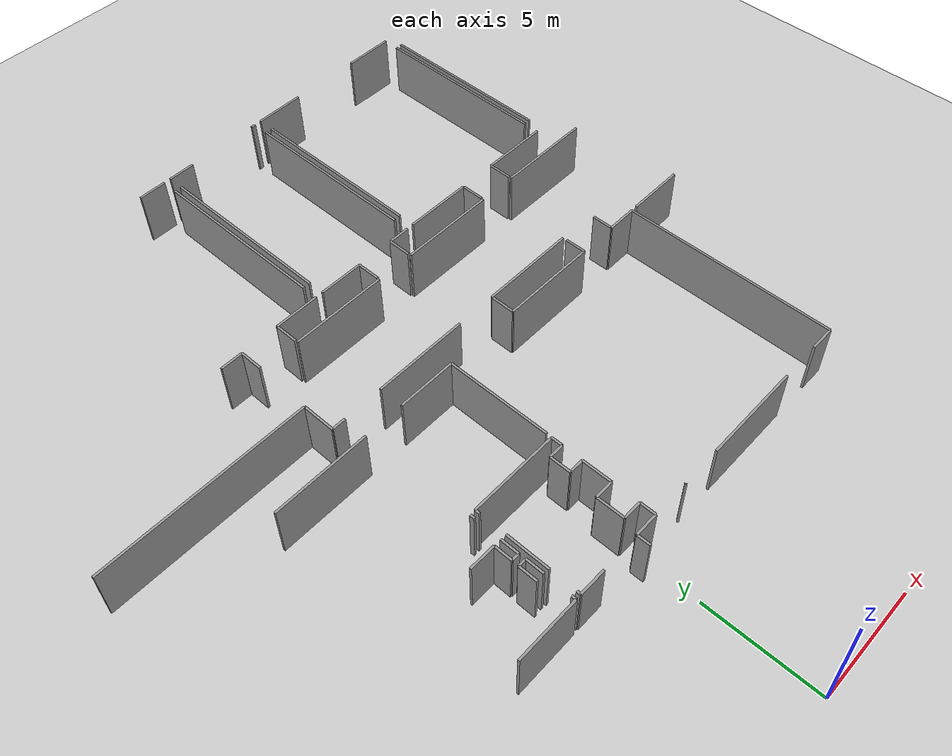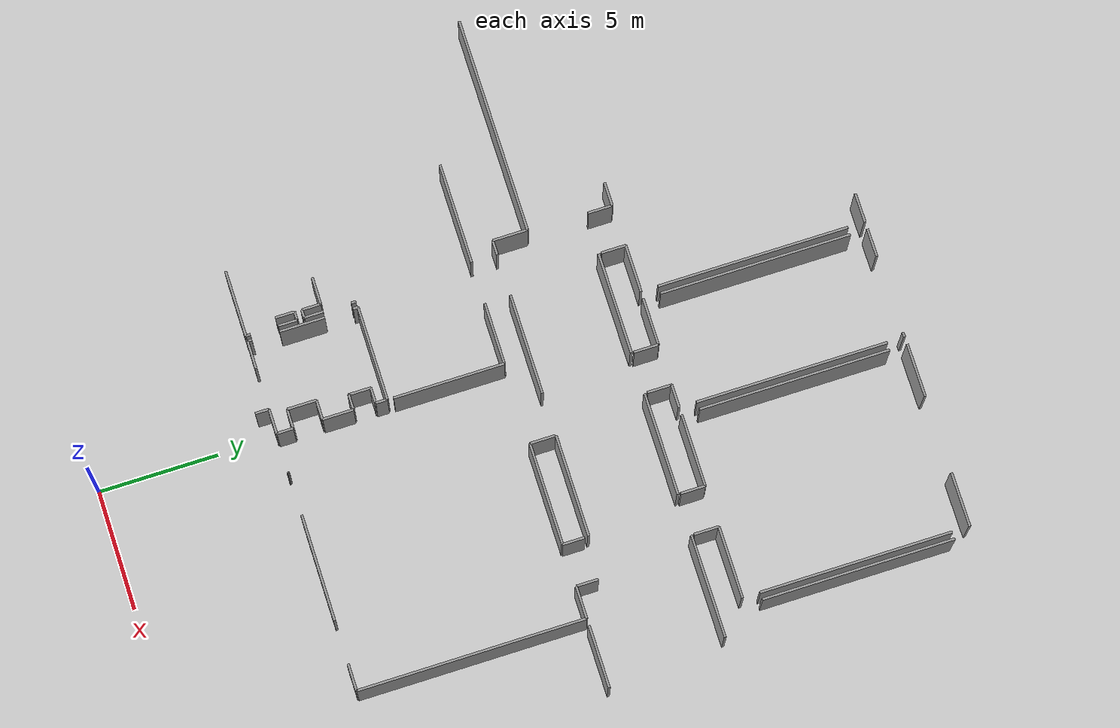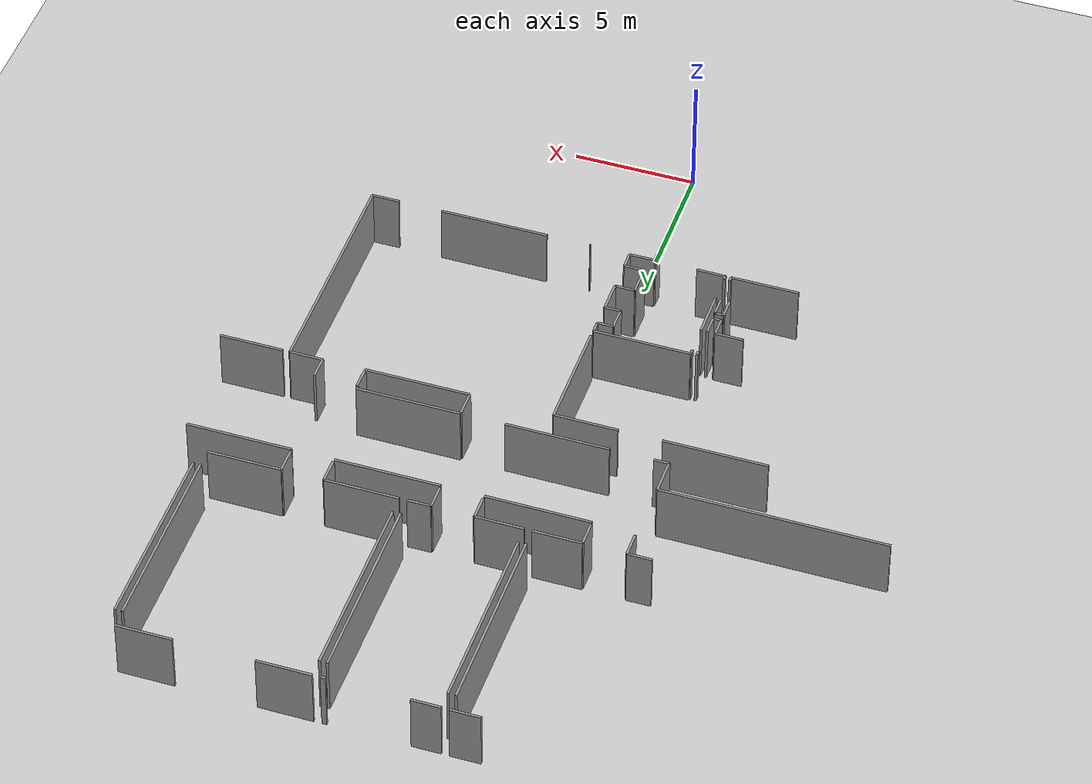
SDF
<sdf version="1.6">
 <world name="default">
  <model name="ground_plane">
   <static>1</static>
   <link name="link">
    <collision name="collision">
     <geometry><plane><normal>0 0 1</normal><size>100 100</size></plane></geometry>
     <surface><friction><ode><mu>100</mu><mu2>50</mu2></ode></friction></surface>
    </collision>
    <visual name="visual">
     <cast_shadows>0</cast_shadows>
     <geometry><plane><normal>0 0 1</normal><size>100 100</size></plane></geometry>
     <material>
      <script><uri>file://media/materials/scripts/gazebo.material</uri><name>Gazebo/Grey</name></script>
     </material>
    </visual>
   </link>
  </model>
  <model name="50052750">
   <static>1</static>
   <link name="Wall_87">
    <collision name="Wall_87_Collision">
     <geometry><box><size>4.24862293154 0.1 2.5</size></box></geometry>
     <pose>2.12431146577 0 1.25 0 0 0</pose>
    </collision>
    <visual name="Wall_87_Visual">
     <pose>2.12431146577 0 1.25 0 0 0</pose>
     <geometry><box><size>4.24862293154 0.1 2.5</size></box></geometry>
     <material>
      <script><uri>file://media/materials/scripts/gazebo.material</uri><name>Gazebo/Grey</name></script>
      <ambient>1 1 1 1</ambient>
     </material>
    </visual>
    <pose>39.8165517469 -10.6099997333 0 0 0 0.0</pose>
   </link>
   <link name="Wall_88">
    <collision name="Wall_88_Collision">
     <geometry><box><size>4.27059506376 0.1 2.5</size></box></geometry>
     <pose>2.13529753188 0 1.25 0 0 0</pose>
    </collision>
    <visual name="Wall_88_Visual">
     <pose>2.13529753188 0 1.25 0 0 0</pose>
     <geometry><box><size>4.27059506376 0.1 2.5</size></box></geometry>
     <material>
      <script><uri>file://media/materials/scripts/gazebo.material</uri><name>Gazebo/Grey</name></script>
      <ambient>1 1 1 1</ambient>
     </material>
    </visual>
    <pose>45.8145628244 -10.6099997333 0 0 0 0.0</pose>
   </link>
   <link name="Wall_89">
    <collision name="Wall_89_Collision">
     <geometry><box><size>4.28164463315 0.1 2.5</size></box></geometry>
     <pose>2.14082231657 0 1.25 0 0 0</pose>
    </collision>
    <visual name="Wall_89_Visual">
     <pose>2.14082231657 0 1.25 0 0 0</pose>
     <geometry><box><size>4.28164463315 0.1 2.5</size></box></geometry>
     <material>
      <script><uri>file://media/materials/scripts/gazebo.material</uri><name>Gazebo/Grey</name></script>
      <ambient>1 1 1 1</ambient>
     </material>
    </visual>
    <pose>51.8104147907 -10.6099997333 0 0 0 0.0</pose>
   </link>
   <link name="Wall_98">
    <collision name="Wall_98_Collision">
     <geometry><box><size>4.2496389839 0.1 2.5</size></box></geometry>
     <pose>2.12481949195 0 1.25 0 0 0</pose>
    </collision>
    <visual name="Wall_98_Visual">
     <pose>2.12481949195 0 1.25 0 0 0</pose>
     <geometry><box><size>4.2496389839 0.1 2.5</size></box></geometry>
     <material>
      <script><uri>file://media/materials/scripts/gazebo.material</uri><name>Gazebo/Grey</name></script>
      <ambient>1 1 1 1</ambient>
     </material>
    </visual>
    <pose>50.6110919896 -14.4903036853 0 0 0 3.14159265359</pose>
   </link>
   <link name="Wall_99">
    <collision name="Wall_99_Collision">
     <geometry><box><size>4.19528018279 0.1 2.5</size></box></geometry>
     <pose>2.09764009139 0 1.25 0 0 0</pose>
    </collision>
    <visual name="Wall_99_Visual">
     <pose>2.09764009139 0 1.25 0 0 0</pose>
     <geometry><box><size>4.19528018279 0.1 2.5</size></box></geometry>
     <material>
      <script><uri>file://media/materials/scripts/gazebo.material</uri><name>Gazebo/Grey</name></script>
      <ambient>1 1 1 1</ambient>
     </material>
    </visual>
    <pose>44.5612622418 -14.4903036853 0 0 0 3.14159265359</pose>
   </link>
   <link name="Wall_100">
    <collision name="Wall_100_Collision">
     <geometry><box><size>0.604932172155 0.1 2.5</size></box></geometry>
     <pose>0.302466086077 0 1.25 0 0 0</pose>
    </collision>
    <visual name="Wall_100_Visual">
     <pose>0.302466086077 0 1.25 0 0 0</pose>
     <geometry><box><size>0.604932172155 0.1 2.5</size></box></geometry>
     <material>
      <script><uri>file://media/materials/scripts/gazebo.material</uri><name>Gazebo/Grey</name></script>
      <ambient>1 1 1 1</ambient>
     </material>
    </visual>
    <pose>38.60935454 -14.4903036853 0 0 0 3.14159265359</pose>
   </link>
   <link name="Wall_101">
    <collision name="Wall_101_Collision">
     <geometry><box><size>1.46032125035 0.1 2.5</size></box></geometry>
     <pose>0.730160625177 0 1.25 0 0 0</pose>
    </collision>
    <visual name="Wall_101_Visual">
     <pose>0.730160625177 0 1.25 0 0 0</pose>
     <geometry><box><size>1.46032125035 0.1 2.5</size></box></geometry>
     <material>
      <script><uri>file://media/materials/scripts/gazebo.material</uri><name>Gazebo/Grey</name></script>
      <ambient>1 1 1 1</ambient>
     </material>
    </visual>
    <pose>38.0044223679 -14.4903036853 0 0 0 1.57079632679</pose>
   </link>
   <link name="Wall_102">
    <collision name="Wall_102_Collision">
     <geometry><box><size>9.13304062558 0.1 2.5</size></box></geometry>
     <pose>4.56652031279 0 1.25 0 0 0</pose>
    </collision>
    <visual name="Wall_102_Visual">
     <pose>4.56652031279 0 1.25 0 0 0</pose>
     <geometry><box><size>9.13304062558 0.1 2.5</size></box></geometry>
     <material>
      <script><uri>file://media/materials/scripts/gazebo.material</uri><name>Gazebo/Grey</name></script>
      <ambient>1 1 1 1</ambient>
     </material>
    </visual>
    <pose>38.0044223679 -13.029982435 0 0 0 3.14159265359</pose>
   </link>
   <link name="Wall_127">
    <collision name="Wall_127_Collision">
     <geometry><box><size>1.22497812312 0.1 2.5</size></box></geometry>
     <pose>0.612489061561 0 1.25 0 0 0</pose>
    </collision>
    <visual name="Wall_127_Visual">
     <pose>0.612489061561 0 1.25 0 0 0</pose>
     <geometry><box><size>1.22497812312 0.1 2.5</size></box></geometry>
     <material>
      <script><uri>file://media/materials/scripts/gazebo.material</uri><name>Gazebo/Grey</name></script>
      <ambient>1 1 1 1</ambient>
     </material>
    </visual>
    <pose>40.5710976287 -0.0260363416527 0 0 0 0.0</pose>
   </link>
   <link name="Wall_128">
    <collision name="Wall_128_Collision">
     <geometry><box><size>8.01868520285 0.1 2.5</size></box></geometry>
     <pose>4.00934260142 0 1.25 0 0 0</pose>
    </collision>
    <visual name="Wall_128_Visual">
     <pose>4.00934260142 0 1.25 0 0 0</pose>
     <geometry><box><size>8.01868520285 0.1 2.5</size></box></geometry>
     <material>
      <script><uri>file://media/materials/scripts/gazebo.material</uri><name>Gazebo/Grey</name></script>
      <ambient>1 1 1 1</ambient>
     </material>
    </visual>
    <pose>41.7960757518 -0.741337201106 0 0 0 -1.57079632679</pose>
   </link>
   <link name="Wall_129">
    <collision name="Wall_129_Collision">
     <geometry><box><size>1.9858743321 0.1 2.5</size></box></geometry>
     <pose>0.992937166052 0 1.25 0 0 0</pose>
    </collision>
    <visual name="Wall_129_Visual">
     <pose>0.992937166052 0 1.25 0 0 0</pose>
     <geometry><box><size>1.9858743321 0.1 2.5</size></box></geometry>
     <material>
      <script><uri>file://media/materials/scripts/gazebo.material</uri><name>Gazebo/Grey</name></script>
      <ambient>1 1 1 1</ambient>
     </material>
    </visual>
    <pose>41.7960757518 -9.47151306707 0 0 0 3.14159265359</pose>
   </link>
   <link name="Wall_130">
    <collision name="Wall_130_Collision">
     <geometry><box><size>1.02697492002 0.1 2.5</size></box></geometry>
     <pose>0.513487460009 0 1.25 0 0 0</pose>
    </collision>
    <visual name="Wall_130_Visual">
     <pose>0.513487460009 0 1.25 0 0 0</pose>
     <geometry><box><size>1.02697492002 0.1 2.5</size></box></geometry>
     <material>
      <script><uri>file://media/materials/scripts/gazebo.material</uri><name>Gazebo/Grey</name></script>
      <ambient>1 1 1 1</ambient>
     </material>
    </visual>
    <pose>39.8102014197 -9.47151306707 0 0 0 -1.57079632679</pose>
   </link>
   <link name="Wall_131">
    <collision name="Wall_131_Collision">
     <geometry><box><size>1.01262318047 0.1 2.5</size></box></geometry>
     <pose>0.506311590236 0 1.25 0 0 0</pose>
    </collision>
    <visual name="Wall_131_Visual">
     <pose>0.506311590236 0 1.25 0 0 0</pose>
     <geometry><box><size>1.01262318047 0.1 2.5</size></box></geometry>
     <material>
      <script><uri>file://media/materials/scripts/gazebo.material</uri><name>Gazebo/Grey</name></script>
      <ambient>1 1 1 1</ambient>
     </material>
    </visual>
    <pose>38.0770701114 -10.4984879871 0 0 0 1.57079632679</pose>
   </link>
   <link name="Wall_132">
    <collision name="Wall_132_Collision">
     <geometry><box><size>0.990270158928 0.1 2.5</size></box></geometry>
     <pose>0.495135079464 0 1.25 0 0 0</pose>
    </collision>
    <visual name="Wall_132_Visual">
     <pose>0.495135079464 0 1.25 0 0 0</pose>
     <geometry><box><size>0.990270158928 0.1 2.5</size></box></geometry>
     <material>
      <script><uri>file://media/materials/scripts/gazebo.material</uri><name>Gazebo/Grey</name></script>
      <ambient>1 1 1 1</ambient>
     </material>
    </visual>
    <pose>38.0770701114 -9.48586480661 0 0 0 3.14107963581</pose>
   </link>
   <link name="Wall_133">
    <collision name="Wall_133_Collision">
     <geometry><box><size>8.00649257456 0.1 2.5</size></box></geometry>
     <pose>4.00324628728 0 1.25 0 0 0</pose>
    </collision>
    <visual name="Wall_133_Visual">
     <pose>4.00324628728 0 1.25 0 0 0</pose>
     <geometry><box><size>8.00649257456 0.1 2.5</size></box></geometry>
     <material>
      <script><uri>file://media/materials/scripts/gazebo.material</uri><name>Gazebo/Grey</name></script>
      <ambient>1 1 1 1</ambient>
     </material>
    </visual>
    <pose>42.1045746487 -8.75354507018 0 0 0 1.57079632679</pose>
   </link>
   <link name="Wall_134">
    <collision name="Wall_134_Collision">
     <geometry><box><size>1.1816688914 0.1 2.5</size></box></geometry>
     <pose>0.590834445699 0 1.25 0 0 0</pose>
    </collision>
    <visual name="Wall_134_Visual">
     <pose>0.590834445699 0 1.25 0 0 0</pose>
     <geometry><box><size>1.1816688914 0.1 2.5</size></box></geometry>
     <material>
      <script><uri>file://media/materials/scripts/gazebo.material</uri><name>Gazebo/Grey</name></script>
      <ambient>1 1 1 1</ambient>
     </material>
    </visual>
    <pose>42.1045746487 -0.0267983809206 0 0 0 0.0</pose>
   </link>
   <link name="Wall_135">
    <collision name="Wall_135_Collision">
     <geometry><box><size>0.200543333998 0.1 2.5</size></box></geometry>
     <pose>0.100271666999 0 1.25 0 0 0</pose>
    </collision>
    <visual name="Wall_135_Visual">
     <pose>0.100271666999 0 1.25 0 0 0</pose>
     <geometry><box><size>0.200543333998 0.1 2.5</size></box></geometry>
     <material>
      <script><uri>file://media/materials/scripts/gazebo.material</uri><name>Gazebo/Grey</name></script>
      <ambient>1 1 1 1</ambient>
     </material>
    </visual>
    <pose>46.56161532 -0.0267983809206 0 0 0 0.0</pose>
   </link>
   <link name="Wall_136">
    <collision name="Wall_136_Collision">
     <geometry><box><size>8.01449398688 0.1 2.5</size></box></geometry>
     <pose>4.00724699344 0 1.25 0 0 0</pose>
    </collision>
    <visual name="Wall_136_Visual">
     <pose>4.00724699344 0 1.25 0 0 0</pose>
     <geometry><box><size>8.01449398688 0.1 2.5</size></box></geometry>
     <material>
      <script><uri>file://media/materials/scripts/gazebo.material</uri><name>Gazebo/Grey</name></script>
      <ambient>1 1 1 1</ambient>
     </material>
    </visual>
    <pose>46.762158654 -0.74336930582 0 0 0 -1.57079632679</pose>
   </link>
   <link name="Wall_137">
    <collision name="Wall_137_Collision">
     <geometry><box><size>0.959788457899 0.1 2.5</size></box></geometry>
     <pose>0.47989422895 0 1.25 0 0 0</pose>
    </collision>
    <visual name="Wall_137_Visual">
     <pose>0.47989422895 0 1.25 0 0 0</pose>
     <geometry><box><size>0.959788457899 0.1 2.5</size></box></geometry>
     <material>
      <script><uri>file://media/materials/scripts/gazebo.material</uri><name>Gazebo/Grey</name></script>
      <ambient>1 1 1 1</ambient>
     </material>
    </visual>
    <pose>46.762158654 -9.48103855792 0 0 0 3.14159265359</pose>
   </link>
   <link name="Wall_138">
    <collision name="Wall_138_Collision">
     <geometry><box><size>1.02367274986 0.1 2.5</size></box></geometry>
     <pose>0.511836374928 0 1.25 0 0 0</pose>
    </collision>
    <visual name="Wall_138_Visual">
     <pose>0.511836374928 0 1.25 0 0 0</pose>
     <geometry><box><size>1.02367274986 0.1 2.5</size></box></geometry>
     <material>
      <script><uri>file://media/materials/scripts/gazebo.material</uri><name>Gazebo/Grey</name></script>
      <ambient>1 1 1 1</ambient>
     </material>
    </visual>
    <pose>45.8023701961 -9.48103855792 0 0 0 -1.57079632679</pose>
   </link>
   <link name="Wall_139">
    <collision name="Wall_139_Collision">
     <geometry><box><size>1.02341873677 0.1 2.5</size></box></geometry>
     <pose>0.511709368384 0 1.25 0 0 0</pose>
    </collision>
    <visual name="Wall_139_Visual">
     <pose>0.511709368384 0 1.25 0 0 0</pose>
     <geometry><box><size>1.02341873677 0.1 2.5</size></box></geometry>
     <material>
      <script><uri>file://media/materials/scripts/gazebo.material</uri><name>Gazebo/Grey</name></script>
      <ambient>1 1 1 1</ambient>
     </material>
    </visual>
    <pose>44.0788913853 -10.5047113078 0 0 0 1.57079632679</pose>
   </link>
   <link name="Wall_140">
    <collision name="Wall_140_Collision">
     <geometry><box><size>1.97431928974 0.1 2.5</size></box></geometry>
     <pose>0.987159644872 0 1.25 0 0 0</pose>
    </collision>
    <visual name="Wall_140_Visual">
     <pose>0.987159644872 0 1.25 0 0 0</pose>
     <geometry><box><size>1.97431928974 0.1 2.5</size></box></geometry>
     <material>
      <script><uri>file://media/materials/scripts/gazebo.material</uri><name>Gazebo/Grey</name></script>
      <ambient>1 1 1 1</ambient>
     </material>
    </visual>
    <pose>44.0788913853 -9.48129257101 0 0 0 3.13998442082</pose>
   </link>
   <link name="Wall_141">
    <collision name="Wall_141_Collision">
     <geometry><box><size>7.97778909547 0.1 2.5</size></box></geometry>
     <pose>3.98889454774 0 1.25 0 0 0</pose>
    </collision>
    <visual name="Wall_141_Visual">
     <pose>3.98889454774 0 1.25 0 0 0</pose>
     <geometry><box><size>7.97778909547 0.1 2.5</size></box></geometry>
     <material>
      <script><uri>file://media/materials/scripts/gazebo.material</uri><name>Gazebo/Grey</name></script>
      <ambient>1 1 1 1</ambient>
     </material>
    </visual>
    <pose>47.0724356426 -8.73462109503 0 0 0 1.57079632679</pose>
   </link>
   <link name="Wall_142">
    <collision name="Wall_142_Collision">
     <geometry><box><size>2.22172548551 0.1 2.5</size></box></geometry>
     <pose>1.11086274276 0 1.25 0 0 0</pose>
    </collision>
    <visual name="Wall_142_Visual">
     <pose>1.11086274276 0 1.25 0 0 0</pose>
     <geometry><box><size>2.22172548551 0.1 2.5</size></box></geometry>
     <material>
      <script><uri>file://media/materials/scripts/gazebo.material</uri><name>Gazebo/Grey</name></script>
      <ambient>1 1 1 1</ambient>
     </material>
    </visual>
    <pose>47.0724356426 -0.0161298311702 0 0 0 0.0</pose>
   </link>
   <link name="Wall_143">
    <collision name="Wall_143_Collision">
     <geometry><box><size>2.26478070415 0.1 2.5</size></box></geometry>
     <pose>1.13239035207 0 1.25 0 0 0</pose>
    </collision>
    <visual name="Wall_143_Visual">
     <pose>1.13239035207 0 1.25 0 0 0</pose>
     <geometry><box><size>2.26478070415 0.1 2.5</size></box></geometry>
     <material>
      <script><uri>file://media/materials/scripts/gazebo.material</uri><name>Gazebo/Grey</name></script>
      <ambient>1 1 1 1</ambient>
     </material>
    </visual>
    <pose>52.5391783439 -0.0161298311702 0 0 0 0.0</pose>
   </link>
   <link name="Wall_144">
    <collision name="Wall_144_Collision">
     <geometry><box><size>8.00674658765 0.1 2.5</size></box></geometry>
     <pose>4.00337329383 0 1.25 0 0 0</pose>
    </collision>
    <visual name="Wall_144_Visual">
     <pose>4.00337329383 0 1.25 0 0 0</pose>
     <geometry><box><size>8.00674658765 0.1 2.5</size></box></geometry>
     <material>
      <script><uri>file://media/materials/scripts/gazebo.material</uri><name>Gazebo/Grey</name></script>
      <ambient>1 1 1 1</ambient>
     </material>
    </visual>
    <pose>54.803959048 -0.746798482526 0 0 0 -1.57079632679</pose>
   </link>
   <link name="Wall_145">
    <collision name="Wall_145_Collision">
     <geometry><box><size>2.9931632377 0.1 2.5</size></box></geometry>
     <pose>1.49658161885 0 1.25 0 0 0</pose>
    </collision>
    <visual name="Wall_145_Visual">
     <pose>1.49658161885 0 1.25 0 0 0</pose>
     <geometry><box><size>2.9931632377 0.1 2.5</size></box></geometry>
     <material>
      <script><uri>file://media/materials/scripts/gazebo.material</uri><name>Gazebo/Grey</name></script>
      <ambient>1 1 1 1</ambient>
     </material>
    </visual>
    <pose>54.803959048 -9.47341816524 0 0 0 3.14159265359</pose>
   </link>
   <link name="Wall_146">
    <collision name="Wall_146_Collision">
     <geometry><box><size>1.02938804437 0.1 2.5</size></box></geometry>
     <pose>0.514694022183 0 1.25 0 0 0</pose>
    </collision>
    <visual name="Wall_146_Visual">
     <pose>0.514694022183 0 1.25 0 0 0</pose>
     <geometry><box><size>1.02938804437 0.1 2.5</size></box></geometry>
     <material>
      <script><uri>file://media/materials/scripts/gazebo.material</uri><name>Gazebo/Grey</name></script>
      <ambient>1 1 1 1</ambient>
     </material>
    </visual>
    <pose>51.8107958103 -9.47341816524 0 0 0 -1.57079632679</pose>
   </link>
   <link name="Wall_147">
    <collision name="Wall_147_Collision">
     <geometry><box><size>1.02011656661 0.1 2.5</size></box></geometry>
     <pose>0.510058283303 0 1.25 0 0 0</pose>
    </collision>
    <visual name="Wall_147_Visual">
     <pose>0.510058283303 0 1.25 0 0 0</pose>
     <geometry><box><size>1.02011656661 0.1 2.5</size></box></geometry>
     <material>
      <script><uri>file://media/materials/scripts/gazebo.material</uri><name>Gazebo/Grey</name></script>
      <ambient>1 1 1 1</ambient>
     </material>
    </visual>
    <pose>50.09023815 -10.5028062096 0 0 0 1.57079632679</pose>
   </link>
   <link name="Wall_148">
    <collision name="Wall_148_Collision">
     <geometry><box><size>3.01781059192 0.1 2.5</size></box></geometry>
     <pose>1.50890529596 0 1.25 0 0 0</pose>
    </collision>
    <visual name="Wall_148_Visual">
     <pose>1.50890529596 0 1.25 0 0 0</pose>
     <geometry><box><size>3.01781059192 0.1 2.5</size></box></geometry>
     <material>
      <script><uri>file://media/materials/scripts/gazebo.material</uri><name>Gazebo/Grey</name></script>
      <ambient>1 1 1 1</ambient>
     </material>
    </visual>
    <pose>50.09023815 -9.482689643 0 0 0 3.13927794033</pose>
   </link>
   <link name="Wall_149">
    <collision name="Wall_149_Collision">
     <geometry><box><size>8.01601806541 0.1 2.5</size></box></geometry>
     <pose>4.00800903271 0 1.25 0 0 0</pose>
    </collision>
    <visual name="Wall_149_Visual">
     <pose>4.00800903271 0 1.25 0 0 0</pose>
     <geometry><box><size>8.01601806541 0.1 2.5</size></box></geometry>
     <material>
      <script><uri>file://media/materials/scripts/gazebo.material</uri><name>Gazebo/Grey</name></script>
      <ambient>1 1 1 1</ambient>
     </material>
    </visual>
    <pose>55.0956930811 -8.7518939851 0 0 0 1.57079632679</pose>
   </link>
   <link name="Wall_207">
    <collision name="Wall_207_Collision">
     <geometry><box><size>2.59512472678 0.1 2.5</size></box></geometry>
     <pose>1.29756236339 0 1.25 0 0 0</pose>
    </collision>
    <visual name="Wall_207_Visual">
     <pose>1.29756236339 0 1.25 0 0 0</pose>
     <geometry><box><size>2.59512472678 0.1 2.5</size></box></geometry>
     <material>
      <script><uri>file://media/materials/scripts/gazebo.material</uri><name>Gazebo/Grey</name></script>
      <ambient>1 1 1 1</ambient>
     </material>
    </visual>
    <pose>54.0171535039 -15.5669381643 0 0 0 0.0</pose>
   </link>
   <link name="Wall_219">
    <collision name="Wall_219_Collision">
     <geometry><box><size>1.04005659412 0.1 2.5</size></box></geometry>
     <pose>0.520028297058 0 1.25 0 0 0</pose>
    </collision>
    <visual name="Wall_219_Visual">
     <pose>0.520028297058 0 1.25 0 0 0</pose>
     <geometry><box><size>1.04005659412 0.1 2.5</size></box></geometry>
     <material>
      <script><uri>file://media/materials/scripts/gazebo.material</uri><name>Gazebo/Grey</name></script>
      <ambient>1 1 1 1</ambient>
     </material>
    </visual>
    <pose>46.3599289271 -14.537804133 0 0 0 -1.57079632679</pose>
   </link>
   <link name="Wall_220">
    <collision name="Wall_220_Collision">
     <geometry><box><size>4.2638637169 0.1 2.5</size></box></geometry>
     <pose>2.13193185845 0 1.25 0 0 0</pose>
    </collision>
    <visual name="Wall_220_Visual">
     <pose>2.13193185845 0 1.25 0 0 0</pose>
     <geometry><box><size>4.2638637169 0.1 2.5</size></box></geometry>
     <material>
      <script><uri>file://media/materials/scripts/gazebo.material</uri><name>Gazebo/Grey</name></script>
      <ambient>1 1 1 1</ambient>
     </material>
    </visual>
    <pose>46.3599289271 -15.5778607272 0 0 0 0.0</pose>
   </link>
   <link name="Wall_221">
    <collision name="Wall_221_Collision">
     <geometry><box><size>0.920289422514 0.1 2.5</size></box></geometry>
     <pose>0.460144711257 0 1.25 0 0 0</pose>
    </collision>
    <visual name="Wall_221_Visual">
     <pose>0.460144711257 0 1.25 0 0 0</pose>
     <geometry><box><size>0.920289422514 0.1 2.5</size></box></geometry>
     <material>
      <script><uri>file://media/materials/scripts/gazebo.material</uri><name>Gazebo/Grey</name></script>
      <ambient>1 1 1 1</ambient>
     </material>
    </visual>
    <pose>50.623792644 -15.5778607272 0 0 0 1.57079632679</pose>
   </link>
   <link name="Wall_222">
    <collision name="Wall_222_Collision">
     <geometry><box><size>0.915590180362 0.1 2.5</size></box></geometry>
     <pose>0.457795090181 0 1.25 0 0 0</pose>
    </collision>
    <visual name="Wall_222_Visual">
     <pose>0.457795090181 0 1.25 0 0 0</pose>
     <geometry><box><size>0.915590180362 0.1 2.5</size></box></geometry>
     <material>
      <script><uri>file://media/materials/scripts/gazebo.material</uri><name>Gazebo/Grey</name></script>
      <ambient>1 1 1 1</ambient>
     </material>
    </visual>
    <pose>52.3791500976 -14.6575713046 0 0 0 -1.57079632679</pose>
   </link>
   <link name="Wall_223">
    <collision name="Wall_223_Collision">
     <geometry><box><size>1.34499930781 0.1 2.5</size></box></geometry>
     <pose>0.672499653907 0 1.25 0 0 0</pose>
    </collision>
    <visual name="Wall_223_Visual">
     <pose>0.672499653907 0 1.25 0 0 0</pose>
     <geometry><box><size>1.34499930781 0.1 2.5</size></box></geometry>
     <material>
      <script><uri>file://media/materials/scripts/gazebo.material</uri><name>Gazebo/Grey</name></script>
      <ambient>1 1 1 1</ambient>
     </material>
    </visual>
    <pose>52.3791500976 -15.573161485 0 0 0 0.0</pose>
   </link>
   <link name="Wall_224">
    <collision name="Wall_224_Collision">
     <geometry><box><size>9.47468823068 0.1 2.5</size></box></geometry>
     <pose>4.73734411534 0 1.25 0 0 0</pose>
    </collision>
    <visual name="Wall_224_Visual">
     <pose>4.73734411534 0 1.25 0 0 0</pose>
     <geometry><box><size>9.47468823068 0.1 2.5</size></box></geometry>
     <material>
      <script><uri>file://media/materials/scripts/gazebo.material</uri><name>Gazebo/Grey</name></script>
      <ambient>1 1 1 1</ambient>
     </material>
    </visual>
    <pose>53.7241494054 -15.573161485 0 0 0 -1.57079632679</pose>
   </link>
   <link name="Wall_225">
    <collision name="Wall_225_Collision">
     <geometry><box><size>1.12032473033 0.1 2.5</size></box></geometry>
     <pose>0.560162365167 0 1.25 0 0 0</pose>
    </collision>
    <visual name="Wall_225_Visual">
     <pose>0.560162365167 0 1.25 0 0 0</pose>
     <geometry><box><size>1.12032473033 0.1 2.5</size></box></geometry>
     <material>
      <script><uri>file://media/materials/scripts/gazebo.material</uri><name>Gazebo/Grey</name></script>
      <ambient>1 1 1 1</ambient>
     </material>
    </visual>
    <pose>53.7241494054 -25.0478497157 0 0 0 3.14159265359</pose>
   </link>
   <link name="Wall_226">
    <collision name="Wall_226_Collision">
     <geometry><box><size>4.43430649981 0.1 2.5</size></box></geometry>
     <pose>2.21715324991 0 1.25 0 0 0</pose>
    </collision>
    <visual name="Wall_226_Visual">
     <pose>2.21715324991 0 1.25 0 0 0</pose>
     <geometry><box><size>4.43430649981 0.1 2.5</size></box></geometry>
     <material>
      <script><uri>file://media/materials/scripts/gazebo.material</uri><name>Gazebo/Grey</name></script>
      <ambient>1 1 1 1</ambient>
     </material>
    </visual>
    <pose>50.8083331534 -25.0478497157 0 0 0 3.14159265359</pose>
   </link>
   <link name="Wall_227">
    <collision name="Wall_227_Collision">
     <geometry><box><size>0.0482681685033 0.1 2.5</size></box></geometry>
     <pose>0.0241340842516 0 1.25 0 0 0</pose>
    </collision>
    <visual name="Wall_227_Visual">
     <pose>0.0241340842516 0 1.25 0 0 0</pose>
     <geometry><box><size>0.0482681685033 0.1 2.5</size></box></geometry>
     <material>
      <script><uri>file://media/materials/scripts/gazebo.material</uri><name>Gazebo/Grey</name></script>
      <ambient>1 1 1 1</ambient>
     </material>
    </visual>
    <pose>44.5952999958 -25.0478497157 0 0 0 -2.59666054857</pose>
   </link>
   <link name="Wall_273">
    <collision name="Wall_273_Collision">
     <geometry><box><size>4.62151414662 0.1 2.5</size></box></geometry>
     <pose>2.31075707331 0 1.25 0 0 0</pose>
    </collision>
    <visual name="Wall_273_Visual">
     <pose>2.31075707331 0 1.25 0 0 0</pose>
     <geometry><box><size>4.62151414662 0.1 2.5</size></box></geometry>
     <material>
      <script><uri>file://media/materials/scripts/gazebo.material</uri><name>Gazebo/Grey</name></script>
      <ambient>1 1 1 1</ambient>
     </material>
    </visual>
    <pose>42.9585666549 -20.1884523109 0 0 0 1.57079632679</pose>
   </link>
   <link name="Wall_274">
    <collision name="Wall_274_Collision">
     <geometry><box><size>2.58229706577 0.1 2.5</size></box></geometry>
     <pose>1.29114853288 0 1.25 0 0 0</pose>
    </collision>
    <visual name="Wall_274_Visual">
     <pose>1.29114853288 0 1.25 0 0 0</pose>
     <geometry><box><size>2.58229706577 0.1 2.5</size></box></geometry>
     <material>
      <script><uri>file://media/materials/scripts/gazebo.material</uri><name>Gazebo/Grey</name></script>
      <ambient>1 1 1 1</ambient>
     </material>
    </visual>
    <pose>42.9585666549 -15.5669381643 0 0 0 3.14159265359</pose>
   </link>
   <link name="Wall_275">
    <collision name="Wall_275_Collision">
     <geometry><box><size>4.21598224957 0.1 2.5</size></box></geometry>
     <pose>2.10799112478 0 1.25 0 0 0</pose>
    </collision>
    <visual name="Wall_275_Visual">
     <pose>2.10799112478 0 1.25 0 0 0</pose>
     <geometry><box><size>4.21598224957 0.1 2.5</size></box></geometry>
     <material>
      <script><uri>file://media/materials/scripts/gazebo.material</uri><name>Gazebo/Grey</name></script>
      <ambient>1 1 1 1</ambient>
     </material>
    </visual>
    <pose>38.5998290492 -15.5669381643 0 0 0 3.14159265359</pose>
   </link>
   <link name="Wall_320">
    <collision name="Wall_320_Collision">
     <geometry><box><size>0.175396038158 0.1 2.5</size></box></geometry>
     <pose>0.0876980190789 0 1.25 0 0 0</pose>
    </collision>
    <visual name="Wall_320_Visual">
     <pose>0.0876980190789 0 1.25 0 0 0</pose>
     <geometry><box><size>0.175396038158 0.1 2.5</size></box></geometry>
     <material>
      <script><uri>file://media/materials/scripts/gazebo.material</uri><name>Gazebo/Grey</name></script>
      <ambient>1 1 1 1</ambient>
     </material>
    </visual>
    <pose>38.9918982525 -25.0453095848 0 0 0 1.57079632679</pose>
   </link>
   <link name="Wall_321">
    <collision name="Wall_321_Collision">
     <geometry><box><size>1.89747777703 0.1 2.5</size></box></geometry>
     <pose>0.948738888515 0 1.25 0 0 0</pose>
    </collision>
    <visual name="Wall_321_Visual">
     <pose>0.948738888515 0 1.25 0 0 0</pose>
     <geometry><box><size>1.89747777703 0.1 2.5</size></box></geometry>
     <material>
      <script><uri>file://media/materials/scripts/gazebo.material</uri><name>Gazebo/Grey</name></script>
      <ambient>1 1 1 1</ambient>
     </material>
    </visual>
    <pose>38.9918982525 -23.727362671 0 0 0 1.57079632679</pose>
   </link>
   <link name="Wall_322">
    <collision name="Wall_322_Collision">
     <geometry><box><size>0.208671752855 0.1 2.5</size></box></geometry>
     <pose>0.104335876428 0 1.25 0 0 0</pose>
    </collision>
    <visual name="Wall_322_Visual">
     <pose>0.104335876428 0 1.25 0 0 0</pose>
     <geometry><box><size>0.208671752855 0.1 2.5</size></box></geometry>
     <material>
      <script><uri>file://media/materials/scripts/gazebo.material</uri><name>Gazebo/Grey</name></script>
      <ambient>1 1 1 1</ambient>
     </material>
    </visual>
    <pose>38.9918982525 -20.6511371531 0 0 0 1.57079632679</pose>
   </link>
   <link name="Wall_323">
    <collision name="Wall_323_Collision">
     <geometry><box><size>3.94774442727 0.1 2.5</size></box></geometry>
     <pose>1.97387221364 0 1.25 0 0 0</pose>
    </collision>
    <visual name="Wall_323_Visual">
     <pose>1.97387221364 0 1.25 0 0 0</pose>
     <geometry><box><size>3.94774442727 0.1 2.5</size></box></geometry>
     <material>
      <script><uri>file://media/materials/scripts/gazebo.material</uri><name>Gazebo/Grey</name></script>
      <ambient>1 1 1 1</ambient>
     </material>
    </visual>
    <pose>38.9918982525 -20.4424654002 0 0 0 0.0</pose>
   </link>
   <link name="Wall_324">
    <collision name="Wall_324_Collision">
     <geometry><box><size>0.487197105267 0.1 2.5</size></box></geometry>
     <pose>0.243598552633 0 1.25 0 0 0</pose>
    </collision>
    <visual name="Wall_324_Visual">
     <pose>0.243598552633 0 1.25 0 0 0</pose>
     <geometry><box><size>0.487197105267 0.1 2.5</size></box></geometry>
     <material>
      <script><uri>file://media/materials/scripts/gazebo.material</uri><name>Gazebo/Grey</name></script>
      <ambient>1 1 1 1</ambient>
     </material>
    </visual>
    <pose>42.9396426798 -20.4424654002 0 0 0 -1.57079632679</pose>
   </link>
   <link name="Wall_325">
    <collision name="Wall_325_Collision">
     <geometry><box><size>0.64633630571 0.1 2.5</size></box></geometry>
     <pose>0.323168152855 0 1.25 0 0 0</pose>
    </collision>
    <visual name="Wall_325_Visual">
     <pose>0.323168152855 0 1.25 0 0 0</pose>
     <geometry><box><size>0.64633630571 0.1 2.5</size></box></geometry>
     <material>
      <script><uri>file://media/materials/scripts/gazebo.material</uri><name>Gazebo/Grey</name></script>
      <ambient>1 1 1 1</ambient>
     </material>
    </visual>
    <pose>42.9396426798 -20.9296625055 0 0 0 3.14159265359</pose>
   </link>
   <link name="Wall_326">
    <collision name="Wall_326_Collision">
     <geometry><box><size>0.915082154183 0.1 2.5</size></box></geometry>
     <pose>0.457541077092 0 1.25 0 0 0</pose>
    </collision>
    <visual name="Wall_326_Visual">
     <pose>0.457541077092 0 1.25 0 0 0</pose>
     <geometry><box><size>0.915082154183 0.1 2.5</size></box></geometry>
     <material>
      <script><uri>file://media/materials/scripts/gazebo.material</uri><name>Gazebo/Grey</name></script>
      <ambient>1 1 1 1</ambient>
     </material>
    </visual>
    <pose>42.2933063741 -20.9296625055 0 0 0 -1.57079632679</pose>
   </link>
   <link name="Wall_327">
    <collision name="Wall_327_Collision">
     <geometry><box><size>0.639096932665 0.1 2.5</size></box></geometry>
     <pose>0.319548466332 0 1.25 0 0 0</pose>
    </collision>
    <visual name="Wall_327_Visual">
     <pose>0.319548466332 0 1.25 0 0 0</pose>
     <geometry><box><size>0.639096932665 0.1 2.5</size></box></geometry>
     <material>
      <script><uri>file://media/materials/scripts/gazebo.material</uri><name>Gazebo/Grey</name></script>
      <ambient>1 1 1 1</ambient>
     </material>
    </visual>
    <pose>42.2933063741 -21.8447446597 0 0 0 0.0</pose>
   </link>
   <link name="Wall_328">
    <collision name="Wall_328_Collision">
     <geometry><box><size>1.2931806376 0.1 2.5</size></box></geometry>
     <pose>0.646590318799 0 1.25 0 0 0</pose>
    </collision>
    <visual name="Wall_328_Visual">
     <pose>0.646590318799 0 1.25 0 0 0</pose>
     <geometry><box><size>1.2931806376 0.1 2.5</size></box></geometry>
     <material>
      <script><uri>file://media/materials/scripts/gazebo.material</uri><name>Gazebo/Grey</name></script>
      <ambient>1 1 1 1</ambient>
     </material>
    </visual>
    <pose>42.9324033067 -21.8447446597 0 0 0 -1.57079632679</pose>
   </link>
   <link name="Wall_329">
    <collision name="Wall_329_Collision">
     <geometry><box><size>0.814238957733 0.1 2.5</size></box></geometry>
     <pose>0.407119478867 0 1.25 0 0 0</pose>
    </collision>
    <visual name="Wall_329_Visual">
     <pose>0.407119478867 0 1.25 0 0 0</pose>
     <geometry><box><size>0.814238957733 0.1 2.5</size></box></geometry>
     <material>
      <script><uri>file://media/materials/scripts/gazebo.material</uri><name>Gazebo/Grey</name></script>
      <ambient>1 1 1 1</ambient>
     </material>
    </visual>
    <pose>42.9324033067 -23.1379252973 0 0 0 3.14159265359</pose>
   </link>
   <link name="Wall_330">
    <collision name="Wall_330_Collision">
     <geometry><box><size>1.21227746866 0.1 2.5</size></box></geometry>
     <pose>0.606138734329 0 1.25 0 0 0</pose>
    </collision>
    <visual name="Wall_330_Visual">
     <pose>0.606138734329 0 1.25 0 0 0</pose>
     <geometry><box><size>1.21227746866 0.1 2.5</size></box></geometry>
     <material>
      <script><uri>file://media/materials/scripts/gazebo.material</uri><name>Gazebo/Grey</name></script>
      <ambient>1 1 1 1</ambient>
     </material>
    </visual>
    <pose>42.118164349 -23.1379252973 0 0 0 -1.57079632679</pose>
   </link>
   <link name="Wall_331">
    <collision name="Wall_331_Collision">
     <geometry><box><size>0.814492970823 0.1 2.5</size></box></geometry>
     <pose>0.407246485411 0 1.25 0 0 0</pose>
    </collision>
    <visual name="Wall_331_Visual">
     <pose>0.407246485411 0 1.25 0 0 0</pose>
     <geometry><box><size>0.814492970823 0.1 2.5</size></box></geometry>
     <material>
      <script><uri>file://media/materials/scripts/gazebo.material</uri><name>Gazebo/Grey</name></script>
      <ambient>1 1 1 1</ambient>
     </material>
    </visual>
    <pose>42.118164349 -24.3502027659 0 0 0 0.0</pose>
   </link>
   <link name="Wall_332">
    <collision name="Wall_332_Collision">
     <geometry><box><size>0.688375471988 0.1 2.5</size></box></geometry>
     <pose>0.344187735994 0 1.25 0 0 0</pose>
    </collision>
    <visual name="Wall_332_Visual">
     <pose>0.344187735994 0 1.25 0 0 0</pose>
     <geometry><box><size>0.688375471988 0.1 2.5</size></box></geometry>
     <material>
      <script><uri>file://media/materials/scripts/gazebo.material</uri><name>Gazebo/Grey</name></script>
      <ambient>1 1 1 1</ambient>
     </material>
    </visual>
    <pose>42.9326573198 -24.3502027659 0 0 0 -1.57079632679</pose>
   </link>
   <link name="Wall_333">
    <collision name="Wall_333_Collision">
     <geometry><box><size>1.03548435851 0.1 2.5</size></box></geometry>
     <pose>0.517742179255 0 1.25 0 0 0</pose>
    </collision>
    <visual name="Wall_333_Visual">
     <pose>0.517742179255 0 1.25 0 0 0</pose>
     <geometry><box><size>1.03548435851 0.1 2.5</size></box></geometry>
     <material>
      <script><uri>file://media/materials/scripts/gazebo.material</uri><name>Gazebo/Grey</name></script>
      <ambient>1 1 1 1</ambient>
     </material>
    </visual>
    <pose>42.9326573198 -25.0385782379 0 0 0 3.14159265359</pose>
   </link>
   <link name="Wall_334">
    <collision name="Wall_334_Collision">
     <geometry><box><size>0.580927935217 0.1 2.5</size></box></geometry>
     <pose>0.290463967608 0 1.25 0 0 0</pose>
    </collision>
    <visual name="Wall_334_Visual">
     <pose>0.290463967608 0 1.25 0 0 0</pose>
     <geometry><box><size>0.580927935217 0.1 2.5</size></box></geometry>
     <material>
      <script><uri>file://media/materials/scripts/gazebo.material</uri><name>Gazebo/Grey</name></script>
      <ambient>1 1 1 1</ambient>
     </material>
    </visual>
    <pose>41.8971729613 -25.0385782379 0 0 0 -1.57079632679</pose>
   </link>
   <link name="Wall_338">
    <collision name="Wall_338_Collision">
     <geometry><box><size>1.16912439046 0.1 2.5</size></box></geometry>
     <pose>0.584562195231 0 1.25 0 0 0</pose>
    </collision>
    <visual name="Wall_338_Visual">
     <pose>0.584562195231 0 1.25 0 0 0</pose>
     <geometry><box><size>1.16912439046 0.1 2.5</size></box></geometry>
     <material>
      <script><uri>file://media/materials/scripts/gazebo.material</uri><name>Gazebo/Grey</name></script>
      <ambient>1 1 1 1</ambient>
     </material>
    </visual>
    <pose>40.160993496 -25.0535650102 0 0 0 3.13453139127</pose>
   </link>
   <link name="Wall_380">
    <collision name="Wall_380_Collision">
     <geometry><box><size>0.200162314364 0.1 2.5</size></box></geometry>
     <pose>0.100081157182 0 1.25 0 0 0</pose>
    </collision>
    <visual name="Wall_380_Visual">
     <pose>0.100081157182 0 1.25 0 0 0</pose>
     <geometry><box><size>0.200162314364 0.1 2.5</size></box></geometry>
     <material>
      <script><uri>file://media/materials/scripts/gazebo.material</uri><name>Gazebo/Grey</name></script>
      <ambient>1 1 1 1</ambient>
     </material>
    </visual>
    <pose>38.7455055559 -20.4535149696 0 0 0 -1.57079632679</pose>
   </link>
   <link name="Wall_381">
    <collision name="Wall_381_Collision">
     <geometry><box><size>0.793028864777 0.1 2.5</size></box></geometry>
     <pose>0.396514432389 0 1.25 0 0 0</pose>
    </collision>
    <visual name="Wall_381_Visual">
     <pose>0.396514432389 0 1.25 0 0 0</pose>
     <geometry><box><size>0.793028864777 0.1 2.5</size></box></geometry>
     <material>
      <script><uri>file://media/materials/scripts/gazebo.material</uri><name>Gazebo/Grey</name></script>
      <ambient>1 1 1 1</ambient>
     </material>
    </visual>
    <pose>38.7455055559 -21.8216294686 0 0 0 -1.57079632679</pose>
   </link>
   <link name="Wall_382">
    <collision name="Wall_382_Collision">
     <geometry><box><size>0.329073957181 0.1 2.5</size></box></geometry>
     <pose>0.164536978591 0 1.25 0 0 0</pose>
    </collision>
    <visual name="Wall_382_Visual">
     <pose>0.164536978591 0 1.25 0 0 0</pose>
     <geometry><box><size>0.329073957181 0.1 2.5</size></box></geometry>
     <material>
      <script><uri>file://media/materials/scripts/gazebo.material</uri><name>Gazebo/Grey</name></script>
      <ambient>1 1 1 1</ambient>
     </material>
    </visual>
    <pose>38.7455055559 -22.6146583333 0 0 0 3.14159265359</pose>
   </link>
   <link name="Wall_383">
    <collision name="Wall_383_Collision">
     <geometry><box><size>0.788837648804 0.1 2.5</size></box></geometry>
     <pose>0.394418824402 0 1.25 0 0 0</pose>
    </collision>
    <visual name="Wall_383_Visual">
     <pose>0.394418824402 0 1.25 0 0 0</pose>
     <geometry><box><size>0.788837648804 0.1 2.5</size></box></geometry>
     <material>
      <script><uri>file://media/materials/scripts/gazebo.material</uri><name>Gazebo/Grey</name></script>
      <ambient>1 1 1 1</ambient>
     </material>
    </visual>
    <pose>38.4164315987 -22.6146583333 0 0 0 1.57079632679</pose>
   </link>
   <link name="Wall_384">
    <collision name="Wall_384_Collision">
     <geometry><box><size>1.14178883638 0.1 2.5</size></box></geometry>
     <pose>0.570894418189 0 1.25 0 0 0</pose>
    </collision>
    <visual name="Wall_384_Visual">
     <pose>0.570894418189 0 1.25 0 0 0</pose>
     <geometry><box><size>1.14178883638 0.1 2.5</size></box></geometry>
     <material>
      <script><uri>file://media/materials/scripts/gazebo.material</uri><name>Gazebo/Grey</name></script>
      <ambient>1 1 1 1</ambient>
     </material>
    </visual>
    <pose>38.4164315987 -21.8258206845 0 0 0 3.14159265359</pose>
   </link>
   <link name="Wall_395">
    <collision name="Wall_395_Collision">
     <geometry><box><size>0.807253597778 0.1 2.5</size></box></geometry>
     <pose>0.403626798889 0 1.25 0 0 0</pose>
    </collision>
    <visual name="Wall_395_Visual">
     <pose>0.403626798889 0 1.25 0 0 0</pose>
     <geometry><box><size>0.807253597778 0.1 2.5</size></box></geometry>
     <material>
      <script><uri>file://media/materials/scripts/gazebo.material</uri><name>Gazebo/Grey</name></script>
      <ambient>1 1 1 1</ambient>
     </material>
    </visual>
    <pose>38.405763049 -23.7205043176 0 0 0 1.57079632679</pose>
   </link>
   <link name="Wall_396">
    <collision name="Wall_396_Collision">
     <geometry><box><size>0.351427109039 0.1 2.5</size></box></geometry>
     <pose>0.175713554519 0 1.25 0 0 0</pose>
    </collision>
    <visual name="Wall_396_Visual">
     <pose>0.175713554519 0 1.25 0 0 0</pose>
     <geometry><box><size>0.351427109039 0.1 2.5</size></box></geometry>
     <material>
      <script><uri>file://media/materials/scripts/gazebo.material</uri><name>Gazebo/Grey</name></script>
      <ambient>1 1 1 1</ambient>
     </material>
    </visual>
    <pose>38.405763049 -22.9132507198 0 0 0 0.0</pose>
   </link>
   <link name="Wall_397">
    <collision name="Wall_397_Collision">
     <geometry><box><size>0.785281465554 0.1 2.5</size></box></geometry>
     <pose>0.392640732777 0 1.25 0 0 0</pose>
    </collision>
    <visual name="Wall_397_Visual">
     <pose>0.392640732777 0 1.25 0 0 0</pose>
     <geometry><box><size>0.785281465554 0.1 2.5</size></box></geometry>
     <material>
      <script><uri>file://media/materials/scripts/gazebo.material</uri><name>Gazebo/Grey</name></script>
      <ambient>1 1 1 1</ambient>
     </material>
    </visual>
    <pose>38.757190158 -22.9132507198 0 0 0 -1.57079632679</pose>
   </link>
   <link name="Wall_398">
    <collision name="Wall_398_Collision">
     <geometry><box><size>0.191017843149 0.1 2.5</size></box></geometry>
     <pose>0.0955089215747 0 1.25 0 0 0</pose>
    </collision>
    <visual name="Wall_398_Visual">
     <pose>0.0955089215747 0 1.25 0 0 0</pose>
     <geometry><box><size>0.191017843149 0.1 2.5</size></box></geometry>
     <material>
      <script><uri>file://media/materials/scripts/gazebo.material</uri><name>Gazebo/Grey</name></script>
      <ambient>1 1 1 1</ambient>
     </material>
    </visual>
    <pose>38.757190158 -24.8601340427 0 0 0 -1.57079632679</pose>
   </link>
   <link name="Wall_399">
    <collision name="Wall_399_Collision">
     <geometry><box><size>2.77293616962 0.1 2.5</size></box></geometry>
     <pose>1.38646808481 0 1.25 0 0 0</pose>
    </collision>
    <visual name="Wall_399_Visual">
     <pose>1.38646808481 0 1.25 0 0 0</pose>
     <geometry><box><size>2.77293616962 0.1 2.5</size></box></geometry>
     <material>
      <script><uri>file://media/materials/scripts/gazebo.material</uri><name>Gazebo/Grey</name></script>
      <ambient>1 1 1 1</ambient>
     </material>
    </visual>
    <pose>38.757190158 -25.0511518859 0 0 0 -3.14031019197</pose>
   </link>
   <pose>-42.55 32.5101749388 0 0 0 0</pose>
  </model>
 </world>
</sdf>
